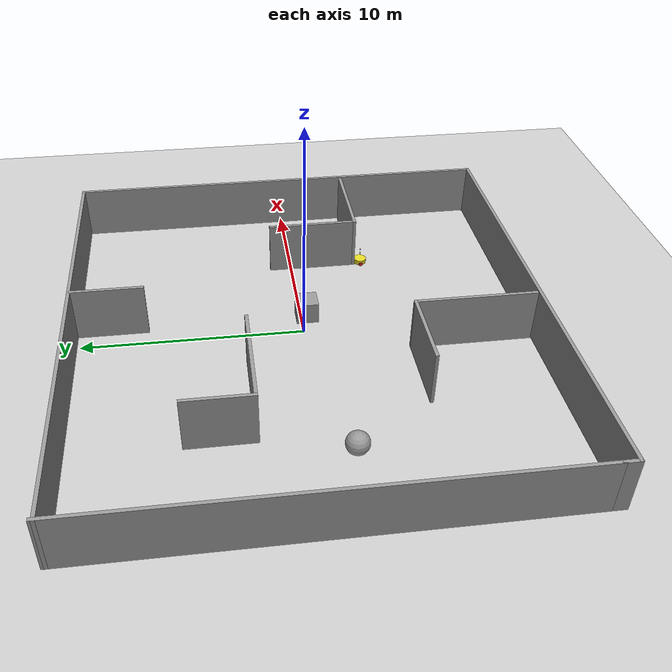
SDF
<sdf version="1.7">
 <world name="default">
  <light name="sun" type="directional">
   <pose>0 0 10 0 -0 0</pose>
   <diffuse>0.8 0.8 0.8 1</diffuse>
   <specular>0.2 0.2 0.2 1</specular>
   <attenuation>
    <range>1000</range>
    <constant>0.9</constant>
    <linear>0.01</linear>
    <quadratic>0.001</quadratic>
   </attenuation>
   <direction>-0.5 0.1 -0.9</direction>
   <spot><inner_angle>0</inner_angle><outer_angle>0</outer_angle><falloff>0</falloff></spot>
  </light>
  <model name="ground_plane">
   <static>1</static>
   <link name="link">
    <collision name="collision">
     <geometry><plane><normal>0 0 1</normal><size>100 100</size></plane></geometry>
     <surface>
      <contact><collide_bitmask>65535</collide_bitmask></contact>
      <friction><ode><mu>100</mu><mu2>50</mu2></ode></friction>
     </surface>
    </collision>
    <visual name="visual">
     <cast_shadows>0</cast_shadows>
     <geometry><plane><normal>0 0 1</normal><size>100 100</size></plane></geometry>
     <material>
      <script><uri>file://media/materials/scripts/gazebo.material</uri><name>Gazebo/Grey</name></script>
     </material>
    </visual>
   </link>
  </model>
  <gravity>0 0 -9.8</gravity>
  <magnetic_field>6e-06 2.3e-05 -4.2e-05</magnetic_field>
  <atmosphere type="adiabatic"/>
  <physics type="ode">
   <max_step_size>0.001</max_step_size>
   <real_time_factor>1</real_time_factor>
   <real_time_update_rate>1000</real_time_update_rate>
  </physics>
  <scene><ambient>0.4 0.4 0.4 1</ambient><background>0.7 0.7 0.7 1</background><shadows>1</shadows></scene>
  <spherical_coordinates>
   <surface_model>EARTH_WGS84</surface_model>
   <latitude_deg>0</latitude_deg>
   <longitude_deg>0</longitude_deg>
   <elevation>0</elevation>
   <heading_deg>0</heading_deg>
  </spherical_coordinates>
  <model name="map1">
   <pose>-0.89073 0.0767 0 0 -0 0</pose>
   <link name="Wall_10">
    <collision name="Wall_10_Collision">
     <geometry><box><size>3 0.15 2.5</size></box></geometry>
     <pose>0 0 1.25 0 -0 0</pose>
    </collision>
    <visual name="Wall_10_Visual">
     <pose>0 0 1.25 0 -0 0</pose>
     <geometry><box><size>3 0.15 2.5</size></box></geometry>
     <material>
      <script><uri>file://media/materials/scripts/gazebo.material</uri><name>Gazebo/Grey</name></script>
      <ambient>1 1 1 1</ambient>
     </material>
     <meta><layer>0</layer></meta>
    </visual>
    <pose>-5.74404 4.00904 0 0 -0 -1.5708</pose>
   </link>
   <link name="Wall_11">
    <collision name="Wall_11_Collision">
     <geometry><box><size>5 0.15 2.5</size></box></geometry>
     <pose>0 0 1.25 0 -0 0</pose>
    </collision>
    <visual name="Wall_11_Visual">
     <pose>0 0 1.25 0 -0 0</pose>
     <geometry><box><size>5 0.15 2.5</size></box></geometry>
     <material>
      <script><uri>file://media/materials/scripts/gazebo.material</uri><name>Gazebo/Grey</name></script>
      <ambient>1 1 1 1</ambient>
     </material>
     <meta><layer>0</layer></meta>
    </visual>
    <pose>-3.31904 2.58404 0 0 -0 0</pose>
   </link>
   <link name="Wall_13">
    <collision name="Wall_13_Collision">
     <geometry><box><size>5.5 0.15 2.5</size></box></geometry>
     <pose>0 0 1.25 0 -0 0</pose>
    </collision>
    <visual name="Wall_13_Visual">
     <pose>0 0 1.25 0 -0 0</pose>
     <geometry><box><size>5.5 0.15 2.5</size></box></geometry>
     <material>
      <script><uri>file://media/materials/scripts/gazebo.material</uri><name>Gazebo/Grey</name></script>
      <ambient>1 1 1 1</ambient>
     </material>
     <meta><layer>0</layer></meta>
    </visual>
    <pose>-0.757836 -7.36632 0 0 -0 -1.5708</pose>
   </link>
   <link name="Wall_16">
    <collision name="Wall_16_Collision">
     <geometry><box><size>4.5 0.15 2.5</size></box></geometry>
     <pose>0 0 1.25 0 -0 0</pose>
    </collision>
    <visual name="Wall_16_Visual">
     <pose>0 0 1.25 0 -0 0</pose>
     <geometry><box><size>4.5 0.15 2.5</size></box></geometry>
     <material>
      <script><uri>file://media/materials/scripts/gazebo.material</uri><name>Gazebo/Grey</name></script>
      <ambient>1 1 1 1</ambient>
     </material>
     <meta><layer>0</layer></meta>
    </visual>
    <pose>8.2326 -3.22299 0 0 -0 3.14159</pose>
   </link>
   <link name="Wall_17">
    <collision name="Wall_17_Collision">
     <geometry><box><size>4.25 0.15 2.5</size></box></geometry>
     <pose>0 0 1.25 0 -0 0</pose>
    </collision>
    <visual name="Wall_17_Visual">
     <pose>0 0 1.25 0 -0 0</pose>
     <geometry><box><size>4.25 0.15 2.5</size></box></geometry>
     <material>
      <script><uri>file://media/materials/scripts/gazebo.material</uri><name>Gazebo/Grey</name></script>
      <ambient>1 1 1 1</ambient>
     </material>
     <meta><layer>0</layer></meta>
    </visual>
    <pose>6.0576 -1.17299 0 0 -0 1.5708</pose>
   </link>
   <link name="Wall_20">
    <collision name="Wall_20_Collision">
     <geometry><box><size>3.75 0.15 2.5</size></box></geometry>
     <pose>0 0 1.25 0 -0 0</pose>
    </collision>
    <visual name="Wall_20_Visual">
     <pose>0 0 1.25 0 -0 0</pose>
     <geometry><box><size>3.75 0.15 2.5</size></box></geometry>
     <material>
      <script><uri>file://media/materials/scripts/gazebo.material</uri><name>Gazebo/Grey</name></script>
      <ambient>1 1 1 1</ambient>
     </material>
     <meta><layer>0</layer></meta>
    </visual>
    <pose>-2.55784 -4.69132 0 0 -0 3.14159</pose>
   </link>
   <link name="Wall_23">
    <collision name="Wall_23_Collision">
     <geometry><box><size>3.25 0.15 2.5</size></box></geometry>
     <pose>0 0 1.25 0 -0 0</pose>
    </collision>
    <visual name="Wall_23_Visual">
     <pose>0 0 1.25 0 -0 0</pose>
     <geometry><box><size>3.25 0.15 2.5</size></box></geometry>
     <material>
      <script><uri>file://media/materials/scripts/gazebo.material</uri><name>Gazebo/Grey</name></script>
      <ambient>1 1 1 1</ambient>
     </material>
     <meta><layer>0</layer></meta>
    </visual>
    <pose>1.75056 8.50317 0 0 -0 -1.5708</pose>
   </link>
   <link name="Wall_4">
    <collision name="Wall_4_Collision">
     <geometry><box><size>20 0.15 2.5</size></box></geometry>
     <pose>0 0 1.25 0 -0 0</pose>
    </collision>
    <visual name="Wall_4_Visual">
     <pose>0 0 1.25 0 -0 0</pose>
     <geometry><box><size>20 0.15 2.5</size></box></geometry>
     <material>
      <script><uri>file://media/materials/scripts/gazebo.material</uri><name>Gazebo/Grey</name></script>
      <ambient>1 1 1 1</ambient>
     </material>
     <meta><layer>0</layer></meta>
    </visual>
    <pose>-10.675 0.3 0 0 -0 -1.5708</pose>
   </link>
   <link name="Wall_5">
    <collision name="Wall_5_Collision">
     <geometry><box><size>0.75 0.15 2.5</size></box></geometry>
     <pose>0 0 1.25 0 -0 0</pose>
    </collision>
    <visual name="Wall_5_Visual">
     <pose>0 0 1.25 0 -0 0</pose>
     <geometry><box><size>0.75 0.15 2.5</size></box></geometry>
     <material>
      <script><uri>file://media/materials/scripts/gazebo.material</uri><name>Gazebo/Grey</name></script>
      <ambient>1 1 1 1</ambient>
     </material>
     <meta><layer>0</layer></meta>
    </visual>
    <pose>-10.675 -9.925 0 0 -0 -1.5708</pose>
   </link>
   <link name="Wall_6">
    <collision name="Wall_6_Collision">
     <geometry><box><size>21.5 0.15 2.5</size></box></geometry>
     <pose>0 0 1.25 0 -0 0</pose>
    </collision>
    <visual name="Wall_6_Visual">
     <pose>0 0 1.25 0 -0 0</pose>
     <geometry><box><size>21.5 0.15 2.5</size></box></geometry>
     <material>
      <script><uri>file://media/materials/scripts/gazebo.material</uri><name>Gazebo/Grey</name></script>
      <ambient>1 1 1 1</ambient>
     </material>
     <meta><layer>0</layer></meta>
    </visual>
    <pose>-0 -10.225 0 0 -0 0</pose>
   </link>
   <link name="Wall_7">
    <collision name="Wall_7_Collision">
     <geometry><box><size>20.5 0.15 2.5</size></box></geometry>
     <pose>0 0 1.25 0 -0 0</pose>
    </collision>
    <visual name="Wall_7_Visual">
     <pose>0 0 1.25 0 -0 0</pose>
     <geometry><box><size>20.5 0.15 2.5</size></box></geometry>
     <material>
      <script><uri>file://media/materials/scripts/gazebo.material</uri><name>Gazebo/Grey</name></script>
      <ambient>1 1 1 1</ambient>
     </material>
     <meta><layer>0</layer></meta>
    </visual>
    <pose>10.675 -0.05 0 0 -0 1.5708</pose>
   </link>
   <link name="Wall_8">
    <collision name="Wall_8_Collision">
     <geometry><box><size>21.5 0.15 2.5</size></box></geometry>
     <pose>0 0 1.25 0 -0 0</pose>
    </collision>
    <visual name="Wall_8_Visual">
     <pose>0 0 1.25 0 -0 0</pose>
     <geometry><box><size>21.5 0.15 2.5</size></box></geometry>
     <material>
      <script><uri>file://media/materials/scripts/gazebo.material</uri><name>Gazebo/Grey</name></script>
      <ambient>1 1 1 1</ambient>
     </material>
     <meta><layer>0</layer></meta>
    </visual>
    <pose>-0 10.125 0 0 -0 3.14159</pose>
   </link>
   <static>1</static>
  </model>
  <model name="unit_sphere_0">
   <pose>-7.66752 -1.09606 0.5 0 -0 0</pose>
   <link name="link">
    <inertial>
     <mass>1</mass>
     <inertia><ixx>0.1</ixx><ixy>0</ixy><ixz>0</ixz><iyy>0.1</iyy><iyz>0</iyz><izz>0.1</izz></inertia>
    </inertial>
    <collision name="collision"><geometry><sphere><radius>0.5</radius></sphere></geometry></collision>
    <visual name="visual">
     <geometry><sphere><radius>0.5</radius></sphere></geometry>
     <material>
      <script><name>Gazebo/Grey</name><uri>file://media/materials/scripts/gazebo.material</uri></script>
     </material>
    </visual>
   </link>
  </model>
  <model name="mycar">
   <link name="base_footprint">
    <inertial>
     <pose>0 0 0.172329 0 -0 0</pose>
     <mass>18.25</mass>
     <inertia>
      <ixx>0.565269</ixx>
      <ixy>0</ixy>
      <ixz>0</ixz>
      <iyy>0.565269</iyy>
      <iyz>0</iyz>
      <izz>0.810072</izz>
     </inertia>
    </inertial>
    <collision name="base_footprint_fixed_joint_lump__base_link_collision">
     <pose>0 0 0.165 0 -0 0</pose>
     <geometry><cylinder><length>0.24</length><radius>0.3</radius></cylinder></geometry>
    </collision>
    <collision name="base_footprint_fixed_joint_lump__support_collision_1">
     <pose>0 0 0.565 0 -0 0</pose>
     <geometry><cylinder><length>0.15</length><radius>0.01</radius></cylinder></geometry>
    </collision>
    <collision name="base_footprint_fixed_joint_lump__laser_collision_2">
     <pose>0 0 0.79 0 -0 0</pose>
     <geometry><cylinder><length>0.05</length><radius>0.03</radius></cylinder></geometry>
    </collision>
    <visual name="base_footprint_visual"><geometry><sphere><radius>0.003</radius></sphere></geometry></visual>
    <visual name="base_footprint_fixed_joint_lump__base_link_visual_1">
     <pose>0 0 0.165 0 -0 0</pose>
     <geometry><cylinder><length>0.24</length><radius>0.3</radius></cylinder></geometry>
     <material>
      <script><name>Gazebo/Yellow</name><uri>file://media/materials/scripts/gazebo.material</uri></script>
     </material>
    </visual>
    <visual name="base_footprint_fixed_joint_lump__support_visual_2">
     <pose>0 0 0.565 0 -0 0</pose>
     <geometry><cylinder><length>0.15</length><radius>0.01</radius></cylinder></geometry>
     <material>
      <script><name>Gazebo/Grey</name><uri>file://media/materials/scripts/gazebo.material</uri></script>
     </material>
    </visual>
    <visual name="base_footprint_fixed_joint_lump__laser_visual_3">
     <pose>0 0 0.79 0 -0 0</pose>
     <geometry><cylinder><length>0.05</length><radius>0.03</radius></cylinder></geometry>
     <material>
      <script><name>Gazebo/Black</name><uri>file://media/materials/scripts/gazebo.material</uri></script>
     </material>
    </visual>
    <sensor name="camera" type="depth">
     <always_on>1</always_on>
     <update_rate>20</update_rate>
     <camera>
      <horizontal_fov>1.0472</horizontal_fov>
      <image><format>R8G8B8</format><width>640</width><height>480</height></image>
      <clip><near>0.01</near><far>10</far></clip>
     </camera>
     <plugin name="kinect_camera_controller" filename="libgazebo_ros_openni_kinect.so">
      <cameraName>camera</cameraName>
      <alwaysOn>1</alwaysOn>
      <updateRate>10</updateRate>
      <imageTopicName>rgb/image_raw</imageTopicName>
      <depthImageTopicName>depth/image_raw</depthImageTopicName>
      <pointCloudTopicName>depth/points</pointCloudTopicName>
      <cameraInfoTopicName>rgb/camera_info</cameraInfoTopicName>
      <depthImageCameraInfoTopicName>depth/camera_info</depthImageCameraInfoTopicName>
      <frameName>support_depth</frameName>
      <baseline>0.1</baseline>
      <distortion_k1>0.0</distortion_k1>
      <distortion_k2>0.0</distortion_k2>
      <distortion_k3>0.0</distortion_k3>
      <distortion_t1>0.0</distortion_t1>
      <distortion_t2>0.0</distortion_t2>
      <pointCloudCutoff>0.2</pointCloudCutoff>
      <robotNamespace>/</robotNamespace>
     </plugin>
     <pose>0 0 0.565 0 -0 0</pose>
    </sensor>
    <sensor name="rplidar" type="ray">
     <visualize>0</visualize>
     <update_rate>5.5</update_rate>
     <ray>
      <scan>
       <horizontal>
        <samples>360</samples>
        <resolution>1</resolution>
        <min_angle>-3</min_angle>
        <max_angle>3</max_angle>
       </horizontal>
       <vertical><samples>1</samples><min_angle>0</min_angle><max_angle>0</max_angle></vertical>
      </scan>
      <range><min>0.1</min><max>30</max><resolution>0.01</resolution></range>
      <noise><type>gaussian</type><mean>0</mean><stddev>0.01</stddev></noise>
     </ray>
     <plugin name="gazebo_rplidar" filename="libgazebo_ros_laser.so">
      <topicName>/scan</topicName>
      <frameName>laser</frameName>
      <robotNamespace>/</robotNamespace>
     </plugin>
     <pose>0 0 0.79 0 -0 0</pose>
    </sensor>
   </link>
   <joint name="back2base_link" type="revolute">
    <pose relative_to="base_footprint">-0.2775 0 0.0225 0 -0 0</pose>
    <parent>base_footprint</parent>
    <child>back_wheel</child>
    <axis>
     <xyz>1 1 1</xyz>
     <limit><lower>-1e+16</lower><upper>1e+16</upper></limit>
     <dynamics><spring_reference>0</spring_reference><spring_stiffness>0</spring_stiffness></dynamics>
    </axis>
   </joint>
   <link name="back_wheel">
    <pose relative_to="back2base_link">0 0 0 0 -0 0</pose>
    <inertial>
     <mass>0.72</mass>
     <inertia>
      <ixx>0.0001458</ixx>
      <ixy>0</ixy>
      <ixz>0</ixz>
      <iyy>0.0001458</iyy>
      <iyz>0</iyz>
      <izz>0.0001458</izz>
     </inertia>
    </inertial>
    <collision name="back_wheel_collision">
     <geometry><sphere><radius>0.0225</radius></sphere></geometry>
    </collision>
    <visual name="back_wheel_visual">
     <geometry><sphere><radius>0.0225</radius></sphere></geometry>
     <material>
      <script><name>Gazebo/Red</name><uri>file://media/materials/scripts/gazebo.material</uri></script>
     </material>
    </visual>
   </link>
   <joint name="base_link2_left" type="revolute">
    <pose relative_to="base_footprint">0 0.3 0.0975 0 -0 0</pose>
    <parent>base_footprint</parent>
    <child>left_wheel</child>
    <axis>
     <xyz>0 1 0</xyz>
     <limit><lower>-1e+16</lower><upper>1e+16</upper></limit>
     <dynamics><spring_reference>0</spring_reference><spring_stiffness>0</spring_stiffness></dynamics>
    </axis>
   </joint>
   <link name="left_wheel">
    <pose relative_to="base_link2_left">0 0 0 0 -0 0</pose>
    <inertial>
     <mass>9</mass>
     <inertia>
      <ixx>0.0229078</ixx>
      <ixy>0</ixy>
      <ixz>0</ixz>
      <iyy>0.0229078</iyy>
      <iyz>0</iyz>
      <izz>0.0427781</izz>
     </inertia>
    </inertial>
    <collision name="left_wheel_collision">
     <pose>0 0 0 1.5708 -0 0</pose>
     <geometry><cylinder><length>0.045</length><radius>0.0975</radius></cylinder></geometry>
    </collision>
    <visual name="left_wheel_visual">
     <pose>0 0 0 1.5708 -0 0</pose>
     <geometry><cylinder><length>0.045</length><radius>0.0975</radius></cylinder></geometry>
     <material>
      <script><name>Gazebo/Red</name><uri>file://media/materials/scripts/gazebo.material</uri></script>
     </material>
    </visual>
   </link>
   <joint name="base_link2_right" type="revolute">
    <pose relative_to="base_footprint">0 -0.3 0.0975 0 -0 0</pose>
    <parent>base_footprint</parent>
    <child>right_wheel</child>
    <axis>
     <xyz>0 1 0</xyz>
     <limit><lower>-1e+16</lower><upper>1e+16</upper></limit>
     <dynamics><spring_reference>0</spring_reference><spring_stiffness>0</spring_stiffness></dynamics>
    </axis>
   </joint>
   <link name="right_wheel">
    <pose relative_to="base_link2_right">0 0 0 0 -0 0</pose>
    <inertial>
     <mass>9</mass>
     <inertia>
      <ixx>0.0229078</ixx>
      <ixy>0</ixy>
      <ixz>0</ixz>
      <iyy>0.0229078</iyy>
      <iyz>0</iyz>
      <izz>0.0427781</izz>
     </inertia>
    </inertial>
    <collision name="right_wheel_collision">
     <pose>0 0 0 1.5708 -0 0</pose>
     <geometry><cylinder><length>0.045</length><radius>0.0975</radius></cylinder></geometry>
    </collision>
    <visual name="right_wheel_visual">
     <pose>0 0 0 1.5708 -0 0</pose>
     <geometry><cylinder><length>0.045</length><radius>0.0975</radius></cylinder></geometry>
     <material>
      <script><name>Gazebo/Red</name><uri>file://media/materials/scripts/gazebo.material</uri></script>
     </material>
    </visual>
   </link>
   <joint name="front2base_link" type="revolute">
    <pose relative_to="base_footprint">0.2775 0 0.0225 0 -0 0</pose>
    <parent>base_footprint</parent>
    <child>front_wheel</child>
    <axis>
     <xyz>1 1 1</xyz>
     <limit><lower>-1e+16</lower><upper>1e+16</upper></limit>
     <dynamics><spring_reference>0</spring_reference><spring_stiffness>0</spring_stiffness></dynamics>
    </axis>
   </joint>
   <link name="front_wheel">
    <pose relative_to="front2base_link">0 0 0 0 -0 0</pose>
    <inertial>
     <mass>0.72</mass>
     <inertia>
      <ixx>0.0001458</ixx>
      <ixy>0</ixy>
      <ixz>0</ixz>
      <iyy>0.0001458</iyy>
      <iyz>0</iyz>
      <izz>0.0001458</izz>
     </inertia>
    </inertial>
    <collision name="front_wheel_collision">
     <geometry><sphere><radius>0.0225</radius></sphere></geometry>
    </collision>
    <visual name="front_wheel_visual">
     <geometry><sphere><radius>0.0225</radius></sphere></geometry>
     <material>
      <script><name>Gazebo/Red</name><uri>file://media/materials/scripts/gazebo.material</uri></script>
     </material>
    </visual>
   </link>
   <plugin name="differential_drive_controller" filename="libgazebo_ros_diff_drive.so">
    <rosDebugLevel>Debug</rosDebugLevel>
    <publishWheelTF>1</publishWheelTF>
    <robotNamespace>/</robotNamespace>
    <publishTf>1</publishTf>
    <publishWheelJointState>1</publishWheelJointState>
    <alwaysOn>1</alwaysOn>
    <updateRate>100.0</updateRate>
    <legacyMode>1</legacyMode>
    <leftJoint>base_link2_left</leftJoint>
    <rightJoint>base_link2_right</rightJoint>
    <wheelSeparation>0.6</wheelSeparation>
    <wheelDiameter>0.195</wheelDiameter>
    <broadcastTF>1</broadcastTF>
    <wheelTorque>30</wheelTorque>
    <wheelAcceleration>1.8</wheelAcceleration>
    <commandTopic>cmd_vel</commandTopic>
    <odometryFrame>odom</odometryFrame>
    <odometryTopic>odom</odometryTopic>
    <robotBaseFrame>base_footprint</robotBaseFrame>
   </plugin>
   <frame name="laser2support" attached_to="support"><pose>0 0 0.225 0 -0 0</pose></frame>
   <frame name="laser" attached_to="laser2support"/>
   <frame name="support2base_link" attached_to="base_link"><pose>0 0 0.4 0 -0 0</pose></frame>
   <frame name="support" attached_to="support2base_link"/>
   <frame name="base_link2base_footprint" attached_to="base_footprint"><pose>0 0 0.165 0 -0 0</pose></frame>
   <frame name="base_link" attached_to="base_link2base_footprint"/>
   <pose>5.2281 -3.52129 -1e-06 5e-06 4e-06 1.5701</pose>
  </model>
  <model name="unit_box">
   <pose>1.10183 -0.261955 0.5 0 -0 0</pose>
   <link name="link">
    <inertial>
     <mass>1</mass>
     <inertia>
      <ixx>0.166667</ixx>
      <ixy>0</ixy>
      <ixz>0</ixz>
      <iyy>0.166667</iyy>
      <iyz>0</iyz>
      <izz>0.166667</izz>
     </inertia>
    </inertial>
    <collision name="collision"><geometry><box><size>1 1 1</size></box></geometry></collision>
    <visual name="visual">
     <geometry><box><size>1 1 1</size></box></geometry>
     <material>
      <script><name>Gazebo/Grey</name><uri>file://media/materials/scripts/gazebo.material</uri></script>
     </material>
    </visual>
   </link>
  </model>
 </world>
</sdf>
